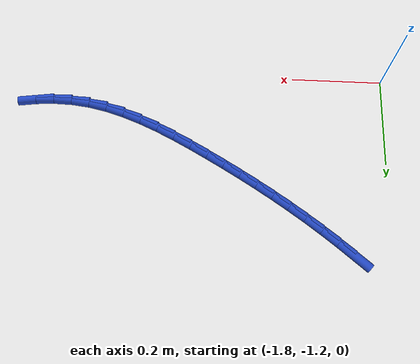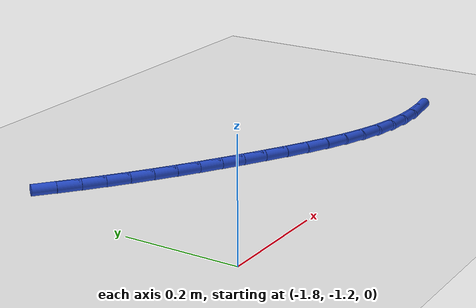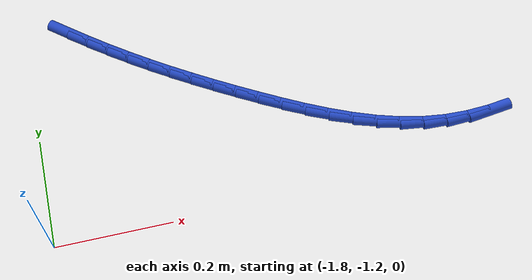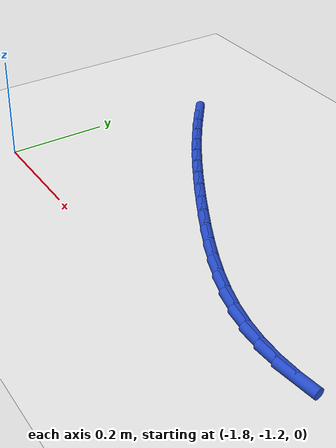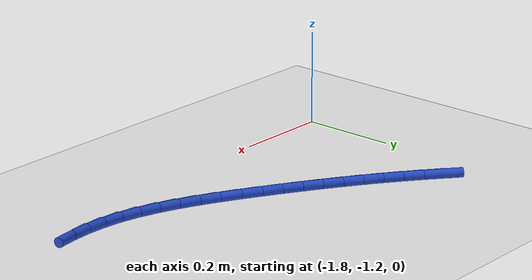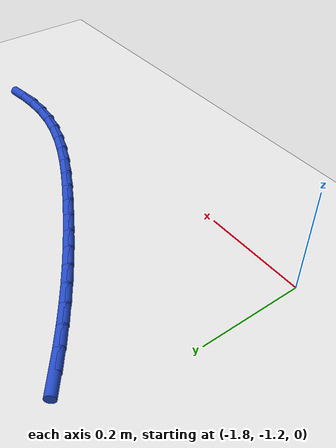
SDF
<sdf version="1.6">
 <world name="default">
  <model name="ground_plane">
   <static>1</static>
   <link name="link">
    <collision name="collision">
     <geometry><plane><normal>0 0 1</normal><size>100 100</size></plane></geometry>
     <surface><friction><ode><mu>100</mu><mu2>50</mu2></ode></friction></surface>
    </collision>
    <visual name="visual">
     <cast_shadows>0</cast_shadows>
     <geometry><plane><normal>0 0 1</normal><size>100 100</size></plane></geometry>
     <material>
      <script><uri>file://media/materials/scripts/gazebo.material</uri><name>Gazebo/WhiteGlow</name></script>
     </material>
    </visual>
   </link>
  </model>
  <model name="line">
   <link name="link_102">
    <pose>-1.7197859000211029 -0.7945355147668152 0.01 0 1.57 -0.6801989238234256</pose>
    <collision name="collision">
     <geometry><cylinder><radius>0.01</radius><length>0.08</length></cylinder></geometry>
    </collision>
    <visual name="visual">
     <material>
      <script><name>Gazebo/Blue</name><uri>file://media/materials/scripts/gazebo.material</uri></script>
     </material>
     <geometry><cylinder><radius>0.01</radius><length>0.08</length></cylinder></geometry>
    </visual>
   </link>
   <link name="link_103">
    <pose>-1.687501385803623 -0.8206533779609161 0.01 0 1.57 -0.6558874154744379</pose>
    <collision name="collision">
     <geometry><cylinder><radius>0.01</radius><length>0.08</length></cylinder></geometry>
    </collision>
    <visual name="visual">
     <material>
      <script><name>Gazebo/Blue</name><uri>file://media/materials/scripts/gazebo.material</uri></script>
     </material>
     <geometry><cylinder><radius>0.01</radius><length>0.08</length></cylinder></geometry>
    </visual>
   </link>
   <link name="link_104">
    <pose>-1.6547184505078214 -0.8458810297502716 0.01 0 1.57 -0.6327992552704614</pose>
    <collision name="collision">
     <geometry><cylinder><radius>0.01</radius><length>0.08</length></cylinder></geometry>
    </collision>
    <visual name="visual">
     <material>
      <script><name>Gazebo/Blue</name><uri>file://media/materials/scripts/gazebo.material</uri></script>
     </material>
     <geometry><cylinder><radius>0.01</radius><length>0.08</length></cylinder></geometry>
    </visual>
   </link>
   <link name="link_105">
    <pose>-1.6214309690181128 -0.8702944305553004 0.01 0 1.57 -0.6110516154391189</pose>
    <collision name="collision">
     <geometry><cylinder><radius>0.01</radius><length>0.08</length></cylinder></geometry>
    </collision>
    <visual name="visual">
     <material>
      <script><name>Gazebo/Blue</name><uri>file://media/materials/scripts/gazebo.material</uri></script>
     </material>
     <geometry><cylinder><radius>0.01</radius><length>0.08</length></cylinder></geometry>
    </visual>
   </link>
   <link name="link_106">
    <pose>-1.5876328162189104 -0.8939695407964208 0.01 0 1.57 -0.590744361637134</pose>
    <collision name="collision">
     <geometry><cylinder><radius>0.01</radius><length>0.08</length></cylinder></geometry>
    </collision>
    <visual name="visual">
     <material>
      <script><name>Gazebo/Blue</name><uri>file://media/materials/scripts/gazebo.material</uri></script>
     </material>
     <geometry><cylinder><radius>0.01</radius><length>0.08</length></cylinder></geometry>
    </visual>
   </link>
   <link name="link_107">
    <pose>-1.5533178669946313 -0.9169823208940503 0.01 0 1.57 -0.571959475599267</pose>
    <collision name="collision">
     <geometry><cylinder><radius>0.01</radius><length>0.08</length></cylinder></geometry>
    </collision>
    <visual name="visual">
     <material>
      <script><name>Gazebo/Blue</name><uri>file://media/materials/scripts/gazebo.material</uri></script>
     </material>
     <geometry><cylinder><radius>0.01</radius><length>0.08</length></cylinder></geometry>
    </visual>
   </link>
   <link name="link_108">
    <pose>-1.5184799962296895 -0.9394087312686079 0.01 0 1.57 -0.554761067609922</pose>
    <collision name="collision">
     <geometry><cylinder><radius>0.01</radius><length>0.08</length></cylinder></geometry>
    </collision>
    <visual name="visual">
     <material>
      <script><name>Gazebo/Blue</name><uri>file://media/materials/scripts/gazebo.material</uri></script>
     </material>
     <geometry><cylinder><radius>0.01</radius><length>0.08</length></cylinder></geometry>
    </visual>
   </link>
   <link name="link_109">
    <pose>-1.4831130788085007 -0.9613247323405121 0.01 0 1.57 -0.5391958878983039</pose>
    <collision name="collision">
     <geometry><cylinder><radius>0.01</radius><length>0.08</length></cylinder></geometry>
    </collision>
    <visual name="visual">
     <material>
      <script><name>Gazebo/Blue</name><uri>file://media/materials/scripts/gazebo.material</uri></script>
     </material>
     <geometry><cylinder><radius>0.01</radius><length>0.08</length></cylinder></geometry>
    </visual>
   </link>
   <link name="link_110">
    <pose>-1.4472109896154794 -0.982806284530181 0.01 0 1.57 -0.5252942306186157</pose>
    <collision name="collision">
     <geometry><cylinder><radius>0.01</radius><length>0.08</length></cylinder></geometry>
    </collision>
    <visual name="visual">
     <material>
      <script><name>Gazebo/Blue</name><uri>file://media/materials/scripts/gazebo.material</uri></script>
     </material>
     <geometry><cylinder><radius>0.01</radius><length>0.08</length></cylinder></geometry>
    </visual>
   </link>
   <link name="link_111">
    <pose>-1.4107676035350403 -1.0039293482580336 0.01 0 1.57 -0.5118486544582757</pose>
    <collision name="collision">
     <geometry><cylinder><radius>0.01</radius><length>0.08</length></cylinder></geometry>
    </collision>
    <visual name="visual">
     <material>
      <script><name>Gazebo/Blue</name><uri>file://media/materials/scripts/gazebo.material</uri></script>
     </material>
     <geometry><cylinder><radius>0.01</radius><length>0.08</length></cylinder></geometry>
    </visual>
   </link>
   <link name="link_112">
    <pose>-1.3737806418066163 -1.0247081904701332 0.01 0 1.57 -0.4913017205038195</pose>
    <collision name="collision">
     <geometry><cylinder><radius>0.01</radius><length>0.08</length></cylinder></geometry>
    </collision>
    <visual name="visual">
     <material>
      <script><name>Gazebo/Blue</name><uri>file://media/materials/scripts/gazebo.material</uri></script>
     </material>
     <geometry><cylinder><radius>0.01</radius><length>0.08</length></cylinder></geometry>
    </visual>
   </link>
   <link name="link_113">
    <pose>-1.336271465889933 -1.0447779016408019 0.01 0 1.57 -0.4605098869979489</pose>
    <collision name="collision">
     <geometry><cylinder><radius>0.01</radius><length>0.08</length></cylinder></geometry>
    </collision>
    <visual name="visual">
     <material>
      <script><name>Gazebo/Blue</name><uri>file://media/materials/scripts/gazebo.material</uri></script>
     </material>
     <geometry><cylinder><radius>0.01</radius><length>0.08</length></cylinder></geometry>
    </visual>
   </link>
   <link name="link_114">
    <pose>-1.2982704124079527 -1.0636296154332012 0.01 0 1.57 -0.4188775207097244</pose>
    <collision name="collision">
     <geometry><cylinder><radius>0.01</radius><length>0.08</length></cylinder></geometry>
    </collision>
    <visual name="visual">
     <material>
      <script><name>Gazebo/Blue</name><uri>file://media/materials/scripts/gazebo.material</uri></script>
     </material>
     <geometry><cylinder><radius>0.01</radius><length>0.08</length></cylinder></geometry>
    </visual>
   </link>
   <link name="link_115">
    <pose>-1.2598078352238486 -1.0807541889867152 0.01 0 1.57 -0.36558613913217597</pose>
    <collision name="collision">
     <geometry><cylinder><radius>0.01</radius><length>0.08</length></cylinder></geometry>
    </collision>
    <visual name="visual">
     <material>
      <script><name>Gazebo/Blue</name><uri>file://media/materials/scripts/gazebo.material</uri></script>
     </material>
     <geometry><cylinder><radius>0.01</radius><length>0.08</length></cylinder></geometry>
    </visual>
   </link>
   <link name="link_116">
    <pose>-1.220914088200793 -1.0956424794407267 0.01 0 1.57 -0.29971270553826074</pose>
    <collision name="collision">
     <geometry><cylinder><radius>0.01</radius><length>0.08</length></cylinder></geometry>
    </collision>
    <visual name="visual">
     <material>
      <script><name>Gazebo/Blue</name><uri>file://media/materials/scripts/gazebo.material</uri></script>
     </material>
     <geometry><cylinder><radius>0.01</radius><length>0.08</length></cylinder></geometry>
    </visual>
   </link>
   <link name="link_117">
    <pose>-1.1816195252019617 -1.10778534393462 0.01 0 1.57 -0.22044236597186015</pose>
    <collision name="collision">
     <geometry><cylinder><radius>0.01</radius><length>0.08</length></cylinder></geometry>
    </collision>
    <visual name="visual">
     <material>
      <script><name>Gazebo/Blue</name><uri>file://media/materials/scripts/gazebo.material</uri></script>
     </material>
     <geometry><cylinder><radius>0.01</radius><length>0.08</length></cylinder></geometry>
    </visual>
   </link>
   <link name="link_118">
    <pose>-1.1419545000905276 -1.1166736396077783 0.01 0 1.57 -0.12789478948727087</pose>
    <collision name="collision">
     <geometry><cylinder><radius>0.01</radius><length>0.08</length></cylinder></geometry>
    </collision>
    <visual name="visual">
     <material>
      <script><name>Gazebo/Blue</name><uri>file://media/materials/scripts/gazebo.material</uri></script>
     </material>
     <geometry><cylinder><radius>0.01</radius><length>0.08</length></cylinder></geometry>
    </visual>
   </link>
   <link name="link_119">
    <pose>-1.1019508709265078 -1.121817974734782 0.01 0 1.57 -0.03247335913798646</pose>
    <collision name="collision">
     <geometry><cylinder><radius>0.01</radius><length>0.08</length></cylinder></geometry>
    </collision>
    <visual name="visual">
     <material>
      <script><name>Gazebo/Blue</name><uri>file://media/materials/scripts/gazebo.material</uri></script>
     </material>
     <geometry><cylinder><radius>0.01</radius><length>0.08</length></cylinder></geometry>
    </visual>
   </link>
   <link name="link_120">
    <pose>-1.0616707689302596 -1.1231264649279722 0.01 0 1.57 0.05556728211409332</pose>
    <collision name="collision">
     <geometry><cylinder><radius>0.01</radius><length>0.08</length></cylinder></geometry>
    </collision>
    <visual name="visual">
     <material>
      <script><name>Gazebo/Blue</name><uri>file://media/materials/scripts/gazebo.material</uri></script>
     </material>
     <geometry><cylinder><radius>0.01</radius><length>0.08</length></cylinder></geometry>
    </visual>
   </link>
   <link name="link_121">
    <pose>-1.021204375221057 -1.1208755401916475 0.01 0 1.57 0.13525907863938208</pose>
    <collision name="collision">
     <geometry><cylinder><radius>0.01</radius><length>0.08</length></cylinder></geometry>
    </collision>
    <visual name="visual">
     <material>
      <script><name>Gazebo/Blue</name><uri>file://media/materials/scripts/gazebo.material</uri></script>
     </material>
     <geometry><cylinder><radius>0.01</radius><length>0.08</length></cylinder></geometry>
    </visual>
   </link>
  </model>
 </world>
</sdf>
